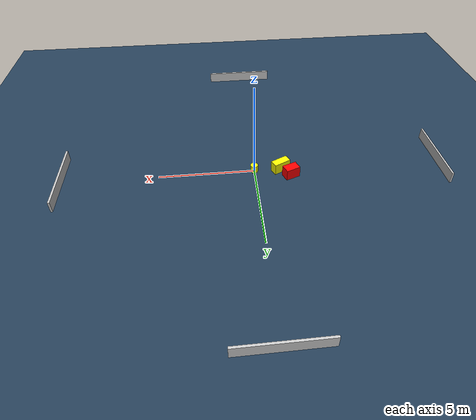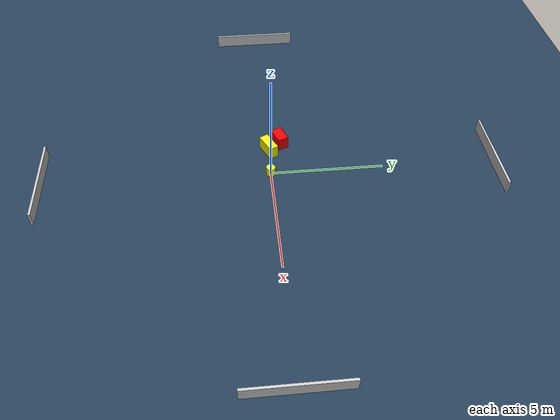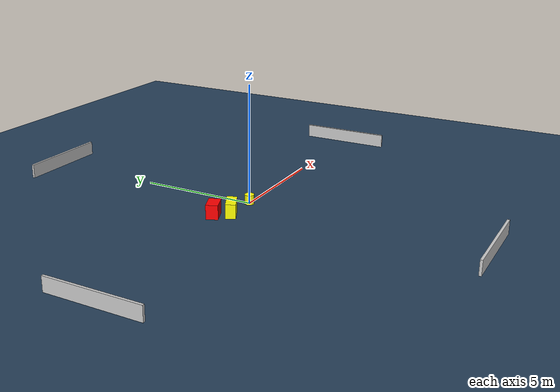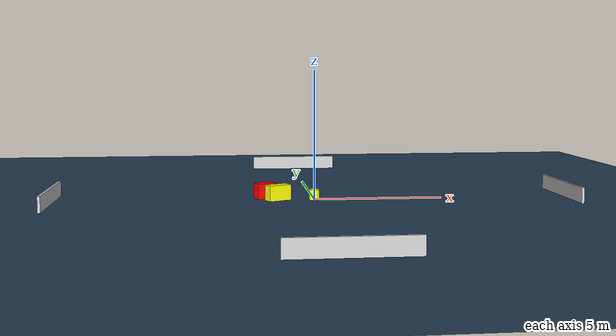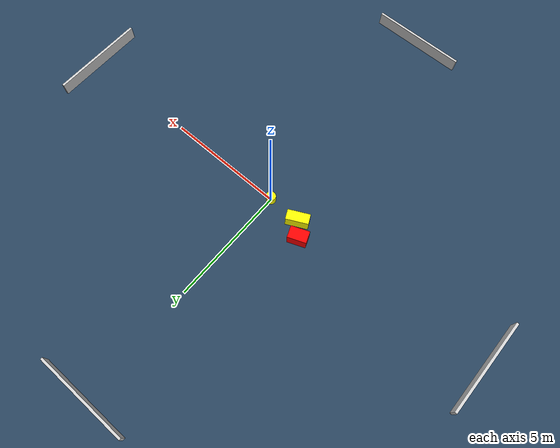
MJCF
<?xml version="1.0" ?>
<mujoco model="generated_environment">
  <option timestep="0.01" integrator="RK4" cone="elliptic"/>
  <default>
    <geom density="1"/>
  </default>
  <asset>
    <texture builtin="gradient" height="3072" name="skybox" rgb1="0.3 0.5 0.7" rgb2="0 0 0" type="skybox" width="512"/>
    <texture builtin="checker" height="300" name="groundplane" rgb1="0.2 0.3 0.4" rgb2="0.1 0.2 0.3" type="2d" width="300"/>
    <material name="groundplane" reflectance="0.2" texrepeat="5 5" texture="groundplane"/>
  </asset>
  <worldbody>
    <light dir="0 0 -1" directional="true" pos="0 0 1.5"/>
    <geom condim="3" friction="0.5 0.005 0.001" material="groundplane" name="floor" pos="0 0 0" size="0 0 0.05" type="plane"/>
    <body name="walls">
      <geom name="wall_1" condim="4" pos="-10.0 0.0 0.3" rgba="0.800000011920929 0.800000011920929 0.800000011920929 1.0" size="0.05 2.0 0.3" type="box"/>
      <geom name="wall_2" condim="4" pos="10.0 0.0 0.3" rgba="0.800000011920929 0.800000011920929 0.800000011920929 1.0" size="0.05 2.0 0.3" type="box"/>
      <geom name="wall_3" condim="4" pos="0.0 -10.0 0.3" rgba="0.800000011920929 0.800000011920929 0.800000011920929 1.0" size="2.0 0.05 0.3" type="box"/>
      <geom name="wall_4" condim="4" pos="0.0 10.0 0.3" rgba="0.800000011920929 0.800000011920929 0.800000011920929 1.0" size="2.0 0.05 0.3" type="box"/>
    </body>
    <body name="robot">
      <joint name="joint_x" type="slide" pos="0 0 0" axis="1 0 0"/>
      <joint name="joint_y" type="slide" pos="0 0 0" axis="0 1 0"/>
      <geom name="robot" type="cylinder" pos="0.0 0.0 0.2" size="0.2 0.2 0.0" mass="5.0" friction="1.0 0.005 0.0001" condim="4" rgba="1.0 1.0 0.0 1.0"/>
    </body>
    <body name="obstacle_1_movable">
      <geom name="obstacle_1_movable" condim="4" pos="-1.4098319635662462 0.03403213923074227 0.3" euler="0 0 206.45008959449117" friction="0.0 0.005 0.001" rgba="1.0 1.0 0.0 1.0" size="0.4630463773270086 0.21002472041552783 0.3" type="box" mass="0.1"/>
      <joint type="free"/>
    </body>
    <body name="obstacle_2_static">
      <geom name="obstacle_2_static" condim="4" pos="-1.884526904810956 0.5750170122132564 0.3" euler="0 0 291.3925985987806" friction="0.0 0.005 0.001" rgba="1.0 0.0 0.0 1.0" size="0.24874642168039876 0.3869580695492545 0.3" type="box"/>
    </body>
  </worldbody>
  <actuator>
    <motor name="actuator_x" joint="joint_x" gear="1" ctrlrange="-1 1"/>
    <motor name="actuator_y" joint="joint_y" gear="1" ctrlrange="-1 1"/>
  </actuator>
</mujoco>
